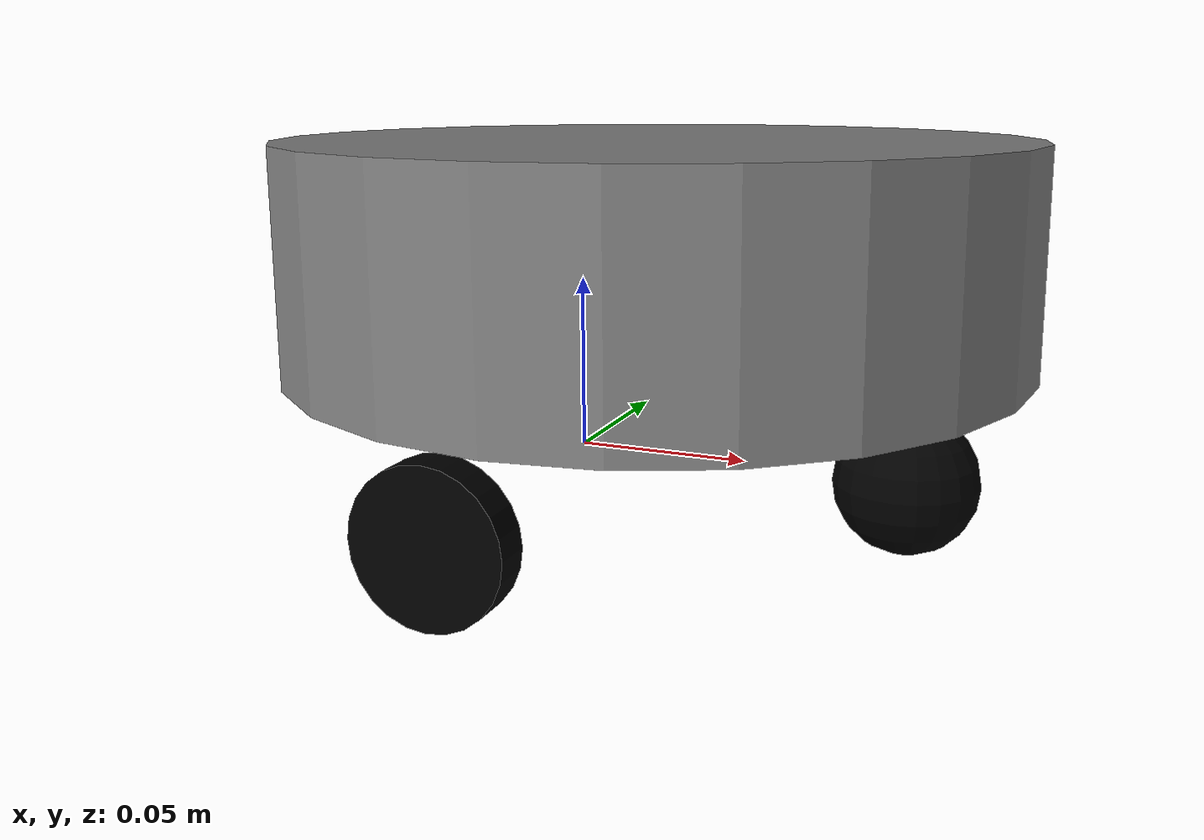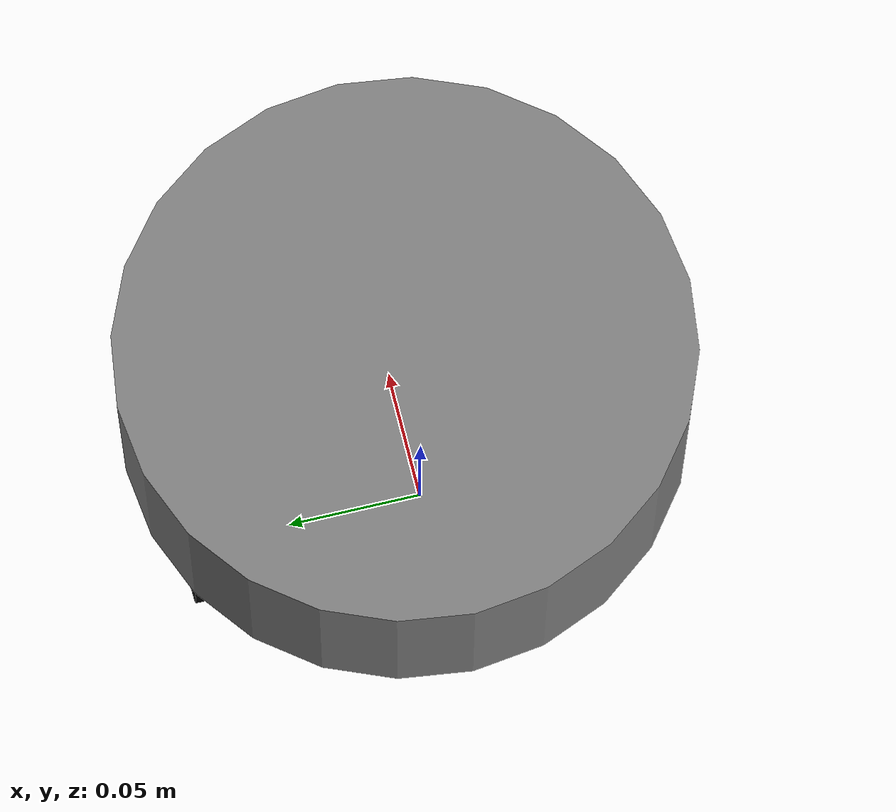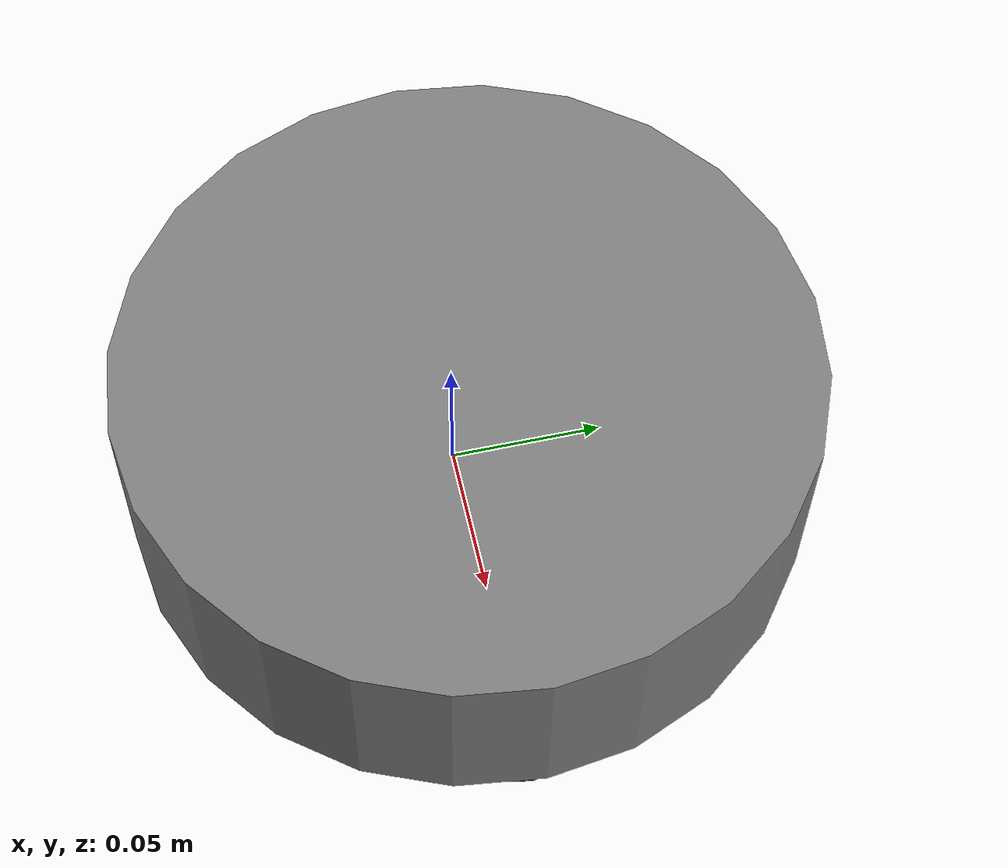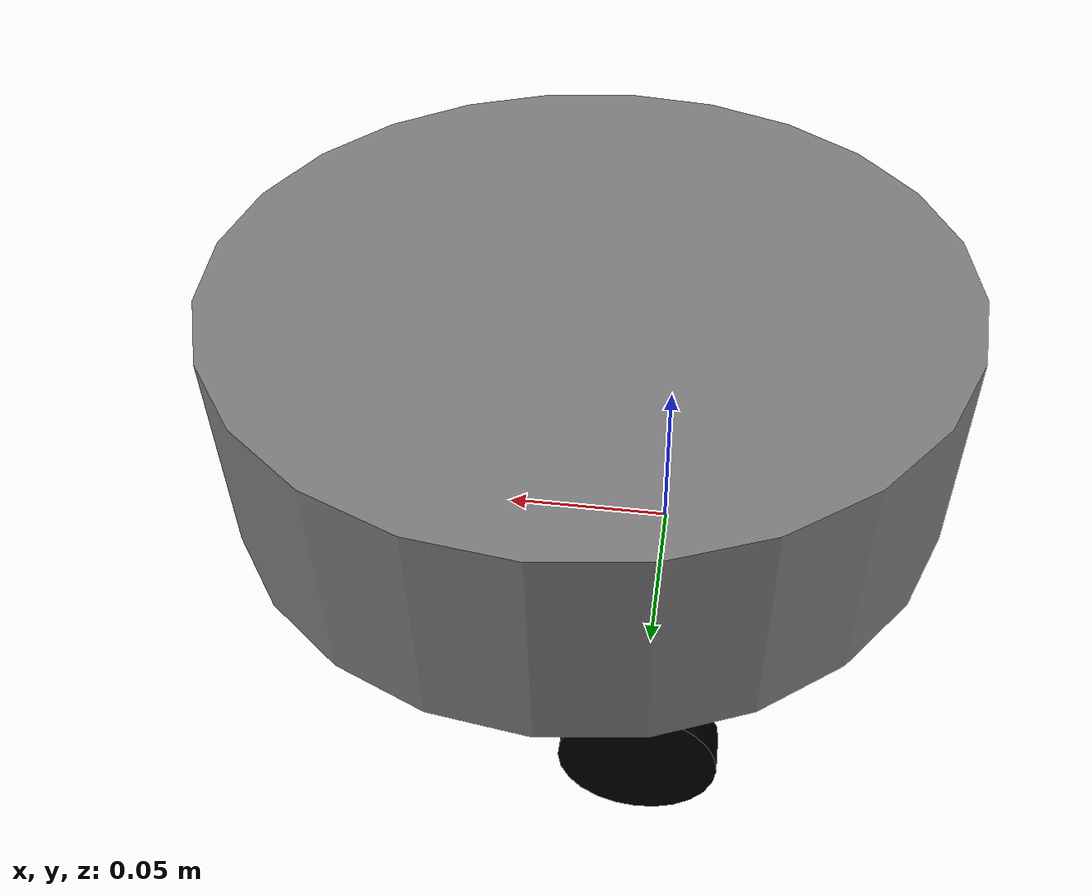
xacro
<?xml version="1.0"?>
<robot xmlns:xacro="http://www.ros.org/wiki/xacro">

    <xacro:include filename="inertial_macros.xacro"/>

    <material name="white">
        <color rgba="1 1 1 1"/>
    </material>

    <material name="black">
        <color rgba="0 0 0 1"/>
    </material>

    <material name="blue">
        <color rgba="0.2 0.2 1 1"/>
    </material>

    <material name="grey">
        <color rgba="0.5 0.5 0.5 1"/>
    </material>

    <!-- BASE LINK -->

    <link name="base_link">

    </link>

    <!-- BASE FOOTPRINT LINK -->

    <joint name="base_footprint_joint" type="fixed">
        <parent link="base_link"/>
        <child link="base_footprint"/>
        <origin xyz="0 0 0" rpy="0 0 0"/>
    </joint>

    <link name="base_footprint">
    </link>

    <!-- CHASSIS LINK -->

    <joint name="chassis_joint" type="fixed">
        <parent link="base_link"/>
        <child link="chassis"/>
        <origin xyz="-0.081 0 0"/>
    </joint>

    <link name="chassis">
        <visual>
            <origin xyz="0.105 0 0.06025"/>
            <geometry>
                <cylinder radius="0.105" length="0.062"/>
            </geometry>
            <material name="grey"/>
        </visual>
        <collision>
        <origin xyz="0.105 0 0.06025"/>
            <geometry>
                <cylinder radius="0.105" length="0.062"/>
            </geometry>
        </collision>
        <xacro:inertial_cylinder mass="2" length="0.062" radius="0.105">
            <origin xyz="0.105 0 0.007" rpy="0 0 0"/>
        </xacro:inertial_cylinder>
    </link>

    <gazebo reference="chassis">
        <material>Gazebo/Gray</material>
    </gazebo>

    <!-- LEFT WHEEL LINK -->

    <joint name="left_wheel_joint" type="continuous">
        <parent link="base_link"/>
        <child link="left_wheel"/>
        <origin xyz="0 0.085 0" rpy="-${pi/2} 0 0"/>
        <axis xyz="0 0 1"/>
    </joint>

    <link name="left_wheel">
        <visual>
            <geometry>
                <cylinder radius="0.02075" length="0.01"/>
            </geometry>
            <material name="black"/>
        </visual>
        <collision>
            <geometry>
                <sphere radius="0.02075"/>
            </geometry>
        </collision>
        <xacro:inertial_cylinder mass="5" length="0.01" radius="0.02075">
            <origin xyz="0 0 0" rpy="0 0 0"/>
        </xacro:inertial_cylinder>
    </link>

    <gazebo reference="left_wheel">
        <material>Gazebo/Black</material>
    </gazebo>

    <!-- RIGHT WHEEL LINK -->

    <joint name="right_wheel_joint" type="continuous">
        <parent link="base_link"/>
        <child link="right_wheel"/>
        <origin xyz="0 -0.085 0" rpy="${pi/2} 0 0"/>
        <axis xyz="0 0 -1"/>
    </joint>

    <link name="right_wheel">
        <visual>
            <geometry>
                <cylinder radius="0.02075" length="0.01"/>
            </geometry>
            <material name="black"/>
        </visual>
        <collision>
            <geometry>
                <sphere radius="0.02075"/>
            </geometry>
        </collision>
        <xacro:inertial_cylinder mass="5" length="0.01" radius="0.02075">
            <origin xyz="0 0 0" rpy="0 0 0"/>
        </xacro:inertial_cylinder>
    </link>

    <gazebo reference="right_wheel">
        <material>Gazebo/Black</material>
    </gazebo>

    <!-- CASTER WHEEL LINK -->

    <joint name="caster_wheel_joint" type="fixed">
        <parent link="chassis"/>
        <child link="caster_wheel"/>
        <origin xyz="0.177 0 0"/>
    </joint>

    <link name="caster_wheel">
        <visual>
            <geometry>
                <sphere radius="0.02"/>
            </geometry>
            <material name="black"/>
        </visual>
        <collision>
            <geometry>
                <sphere radius="0.02"/>
            </geometry>
        </collision>
        <xacro:inertial_sphere mass="5" radius="0.02">
            <origin xyz="0 0 0" rpy="0 0 0"/>
        </xacro:inertial_sphere>
    </link>

    <gazebo reference="caster_wheel">
        <material>Gazebo/Black</material>
        <mu1 value="0.001"/>
        <mu2 value="0.001"/>
    </gazebo>

</robot>

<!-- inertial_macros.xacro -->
<robot xmlns:xacro="http://www.ros.org/wiki/xacro">

    <!-- Specify some standard inertial calculations https://en.wikipedia.org/wiki/List_of_moments_of_inertia -->

    <xacro:macro name="inertial_sphere" params="mass radius *origin">
        <inertial>
            <xacro:insert_block name="origin"/>
            <mass value="${mass}" />
            <inertia ixx="${(2/5) * mass * (radius*radius)}" ixy="0.0" ixz="0.0"
                    iyy="${(2/5) * mass * (radius*radius)}" iyz="0.0"
                    izz="${(2/5) * mass * (radius*radius)}" />
        </inertial>
    </xacro:macro>

    <xacro:macro name="inertial_box" params="mass x y z *origin">
        <inertial>
            <xacro:insert_block name="origin"/>
            <mass value="${mass}" />
            <inertia ixx="${(1/12) * mass * (y*y+z*z)}" ixy="0.0" ixz="0.0"
                    iyy="${(1/12) * mass * (x*x+z*z)}" iyz="0.0"
                    izz="${(1/12) * mass * (x*x+y*y)}" />
        </inertial>
    </xacro:macro>

    <xacro:macro name="inertial_cylinder" params="mass length radius *origin">
        <inertial>
            <xacro:insert_block name="origin"/>
            <mass value="${mass}" />
            <inertia ixx="${(1/12) * mass * (3*radius*radius + length*length)}" ixy="0.0" ixz="0.0"
                    iyy="${(1/12) * mass * (3*radius*radius + length*length)}" iyz="0.0"
                    izz="${(1/2) * mass * (radius*radius)}" />
        </inertial>
    </xacro:macro>

</robot>
